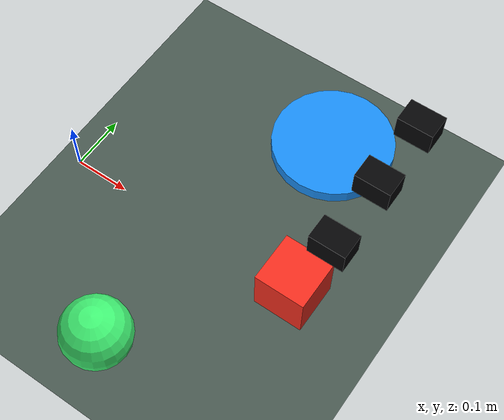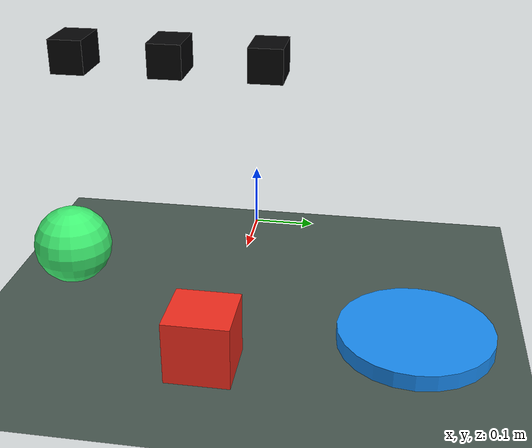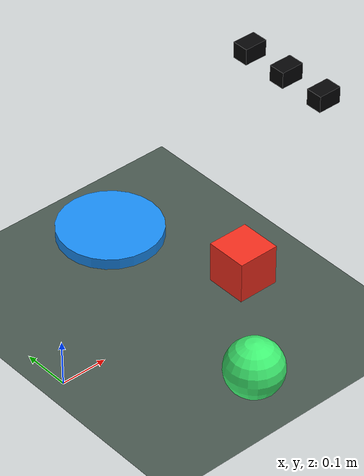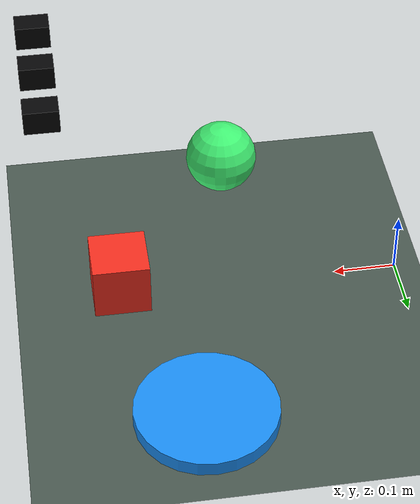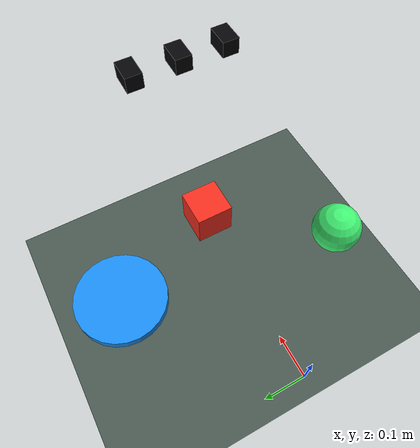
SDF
<?xml version="1.0" ?>
<sdf version="1.9">
  <world name="default">
    <plugin filename="gz-sim-physics-system" name="gz::sim::systems::Physics"/>
    <plugin filename="gz-sim-user-commands-system" name="gz::sim::systems::UserCommands"/>
    <plugin filename="gz-sim-scene-broadcaster-system" name="gz::sim::systems::SceneBroadcaster"/>
    <plugin filename="gz-sim-sensors-system" name="gz::sim::systems::Sensors">
      <render_engine>ogre2</render_engine>
    </plugin>

    <gravity>0 0 -9.8</gravity>
    <physics name="low_rate_physics" type="ignored">
      <max_step_size>0.02</max_step_size>
      <real_time_factor>1.0</real_time_factor>
      <real_time_update_rate>50</real_time_update_rate>
    </physics>
    <scene>
      <ambient>0.45 0.45 0.48 1</ambient>
      <background>0.05 0.07 0.08 1</background>
    </scene>

    <light name="key_light" type="directional">
      <pose>-2 -3 5 0 0 0</pose>
      <diffuse>0.95 0.92 0.85 1</diffuse>
      <specular>0.25 0.25 0.25 1</specular>
      <direction>0.45 0.65 -1</direction>
    </light>

    <model name="ground_plane">
      <static>true</static>
      <link name="link">
        <collision name="collision">
          <geometry>
            <plane>
              <normal>0 0 1</normal>
              <size>4 4</size>
            </plane>
          </geometry>
        </collision>
        <visual name="visual">
          <geometry>
            <plane>
              <normal>0 0 1</normal>
              <size>4 4</size>
            </plane>
          </geometry>
          <material>
            <ambient>0.18 0.22 0.20 1</ambient>
            <diffuse>0.28 0.34 0.31 1</diffuse>
          </material>
        </visual>
      </link>
    </model>

    <model name="pick_cube">
      <static>true</static>
      <pose>0.45 0.00 0.045 0 0 0</pose>
      <link name="link">
        <visual name="visual">
          <geometry><box><size>0.09 0.09 0.09</size></box></geometry>
          <material>
            <ambient>0.95 0.18 0.12 1</ambient>
            <diffuse>0.95 0.18 0.12 1</diffuse>
          </material>
        </visual>
      </link>
    </model>

    <model name="target_pad">
      <static>true</static>
      <pose>0.35 0.28 0.012 0 0 0</pose>
      <link name="link">
        <visual name="visual">
          <geometry><cylinder><radius>0.11</radius><length>0.024</length></cylinder></geometry>
          <material>
            <ambient>0.10 0.55 0.95 1</ambient>
            <diffuse>0.10 0.55 0.95 1</diffuse>
          </material>
        </visual>
      </link>
    </model>

    <model name="workspace_marker">
      <static>true</static>
      <pose>0.25 -0.25 0.06 0 0 0</pose>
      <link name="link">
        <visual name="visual">
          <geometry><sphere><radius>0.06</radius></sphere></geometry>
          <material>
            <ambient>0.25 0.95 0.45 1</ambient>
            <diffuse>0.25 0.95 0.45 1</diffuse>
          </material>
        </visual>
      </link>
    </model>

    <model name="wrist_camera">
      <static>true</static>
      <pose>0.55 0.0 0.45 0 0 0</pose>
      <link name="camera_link">
        <inertial>
          <mass>0.05</mass>
          <inertia>
            <ixx>0.00001</ixx>
            <iyy>0.00001</iyy>
            <izz>0.00001</izz>
          </inertia>
        </inertial>
        <visual name="camera_body">
          <geometry><box><size>0.05 0.035 0.035</size></box></geometry>
          <material>
            <ambient>0.02 0.02 0.025 1</ambient>
            <diffuse>0.02 0.02 0.025 1</diffuse>
          </material>
        </visual>
        <sensor name="image_sensor" type="camera">
          <always_on>true</always_on>
          <update_rate>4</update_rate>
          <topic>/wrist_camera/image_raw</topic>
          <camera>
            <horizontal_fov>1.047</horizontal_fov>
            <image>
              <width>160</width>
              <height>120</height>
              <format>R8G8B8</format>
            </image>
            <clip>
              <near>0.03</near>
              <far>10.0</far>
            </clip>
          </camera>
        </sensor>
      </link>
    </model>

    <model name="wrist_camera_arm_1">
      <static>true</static>
      <pose>0.55 0.00 0.45 0 0 0</pose>
      <link name="camera_link">
        <inertial>
          <mass>0.05</mass>
          <inertia>
            <ixx>0.00001</ixx>
            <iyy>0.00001</iyy>
            <izz>0.00001</izz>
          </inertia>
        </inertial>
        <visual name="camera_body">
          <geometry><box><size>0.05 0.035 0.035</size></box></geometry>
          <material>
            <ambient>0.02 0.02 0.025 1</ambient>
            <diffuse>0.02 0.02 0.025 1</diffuse>
          </material>
        </visual>
        <sensor name="image_sensor" type="camera">
          <always_on>true</always_on>
          <update_rate>4</update_rate>
          <topic>/arm_1/wrist_camera/image_raw</topic>
          <camera>
            <horizontal_fov>1.047</horizontal_fov>
            <image>
              <width>160</width>
              <height>120</height>
              <format>R8G8B8</format>
            </image>
            <clip>
              <near>0.03</near>
              <far>10.0</far>
            </clip>
          </camera>
        </sensor>
      </link>
    </model>

    <model name="wrist_camera_arm_2">
      <static>true</static>
      <pose>0.55 0.10 0.45 0 0 0</pose>
      <link name="camera_link">
        <inertial>
          <mass>0.05</mass>
          <inertia>
            <ixx>0.00001</ixx>
            <iyy>0.00001</iyy>
            <izz>0.00001</izz>
          </inertia>
        </inertial>
        <visual name="camera_body">
          <geometry><box><size>0.05 0.035 0.035</size></box></geometry>
          <material>
            <ambient>0.02 0.02 0.025 1</ambient>
            <diffuse>0.02 0.02 0.025 1</diffuse>
          </material>
        </visual>
        <sensor name="image_sensor" type="camera">
          <always_on>true</always_on>
          <update_rate>4</update_rate>
          <topic>/arm_2/wrist_camera/image_raw</topic>
          <camera>
            <horizontal_fov>1.047</horizontal_fov>
            <image>
              <width>160</width>
              <height>120</height>
              <format>R8G8B8</format>
            </image>
            <clip>
              <near>0.03</near>
              <far>10.0</far>
            </clip>
          </camera>
        </sensor>
      </link>
    </model>

    <model name="wrist_camera_arm_3">
      <static>true</static>
      <pose>0.55 -0.10 0.45 0 0 0</pose>
      <link name="camera_link">
        <inertial>
          <mass>0.05</mass>
          <inertia>
            <ixx>0.00001</ixx>
            <iyy>0.00001</iyy>
            <izz>0.00001</izz>
          </inertia>
        </inertial>
        <visual name="camera_body">
          <geometry><box><size>0.05 0.035 0.035</size></box></geometry>
          <material>
            <ambient>0.02 0.02 0.025 1</ambient>
            <diffuse>0.02 0.02 0.025 1</diffuse>
          </material>
        </visual>
        <sensor name="image_sensor" type="camera">
          <always_on>true</always_on>
          <update_rate>4</update_rate>
          <topic>/arm_3/wrist_camera/image_raw</topic>
          <camera>
            <horizontal_fov>1.047</horizontal_fov>
            <image>
              <width>160</width>
              <height>120</height>
              <format>R8G8B8</format>
            </image>
            <clip>
              <near>0.03</near>
              <far>10.0</far>
            </clip>
          </camera>
        </sensor>
      </link>
    </model>
  </world>
</sdf>
